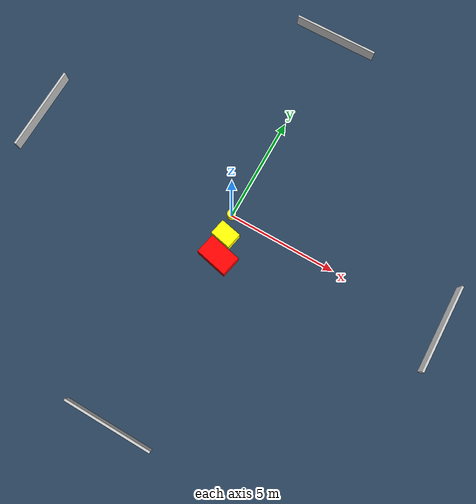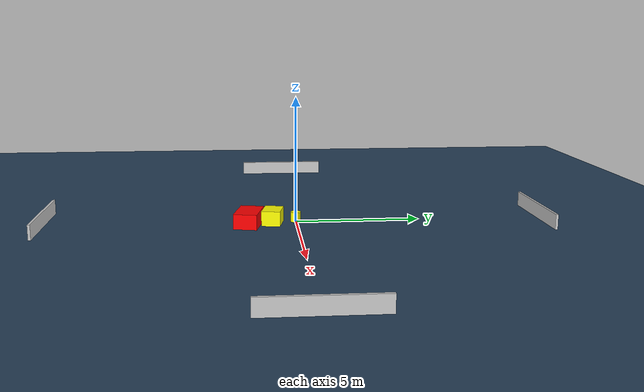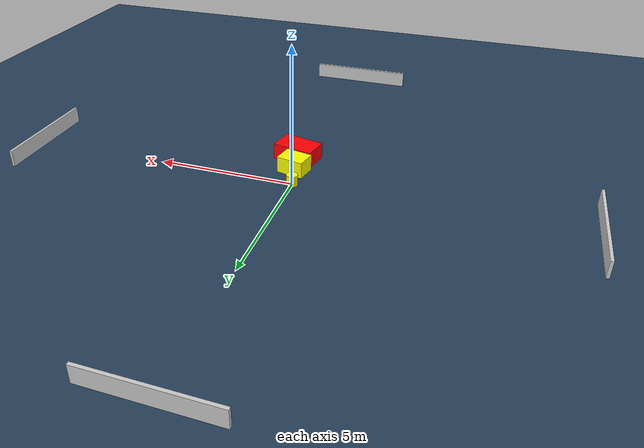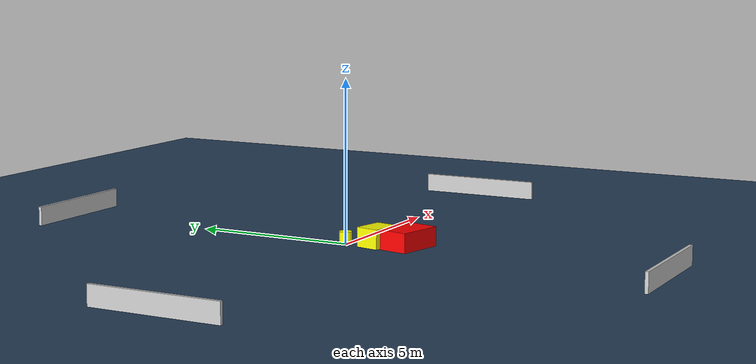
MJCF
<?xml version="1.0" ?>
<mujoco model="generated_environment">
  <option timestep="0.01" integrator="RK4" cone="elliptic"/>
  <default>
    <geom density="1"/>
  </default>
  <asset>
    <texture builtin="gradient" height="3072" name="skybox" rgb1="0.3 0.5 0.7" rgb2="0 0 0" type="skybox" width="512"/>
    <texture builtin="checker" height="300" name="groundplane" rgb1="0.2 0.3 0.4" rgb2="0.1 0.2 0.3" type="2d" width="300"/>
    <material name="groundplane" reflectance="0.2" texrepeat="5 5" texture="groundplane"/>
  </asset>
  <worldbody>
    <light dir="0 0 -1" directional="true" pos="0 0 1.5"/>
    <geom condim="3" friction="0.5 0.005 0.001" material="groundplane" name="floor" pos="0 0 0" size="0 0 0.05" type="plane"/>
    <body name="walls">
      <geom name="wall_1" condim="4" pos="-10.0 0.0 0.3" rgba="0.800000011920929 0.800000011920929 0.800000011920929 1.0" size="0.05 2.0 0.3" type="box"/>
      <geom name="wall_2" condim="4" pos="10.0 0.0 0.3" rgba="0.800000011920929 0.800000011920929 0.800000011920929 1.0" size="0.05 2.0 0.3" type="box"/>
      <geom name="wall_3" condim="4" pos="0.0 -10.0 0.3" rgba="0.800000011920929 0.800000011920929 0.800000011920929 1.0" size="2.0 0.05 0.3" type="box"/>
      <geom name="wall_4" condim="4" pos="0.0 10.0 0.3" rgba="0.800000011920929 0.800000011920929 0.800000011920929 1.0" size="2.0 0.05 0.3" type="box"/>
    </body>
    <body name="robot">
      <joint name="joint_x" type="slide" pos="0 0 0" axis="1 0 0"/>
      <joint name="joint_y" type="slide" pos="0 0 0" axis="0 1 0"/>
      <geom name="robot" type="cylinder" pos="0.0 0.0 0.2" size="0.2 0.2 0.0" mass="5.0" friction="1.0 0.005 0.0001" condim="4" rgba="1.0 1.0 0.0 1.0"/>
    </body>
    <body name="obstacle_1_movable">
      <geom name="obstacle_1_movable" condim="4" pos="0.2351429753512525 -0.9431464544852 0.3" euler="0 0 348.09678841187764" friction="0.0 0.005 0.001" rgba="1.0 1.0 0.0 1.0" size="0.49079045127538967 0.3705281589755788 0.3" type="box" mass="0.1"/>
      <joint type="free"/>
    </body>
    <body name="obstacle_2_static">
      <geom name="obstacle_2_static" condim="4" pos="0.4069399522330972 -1.8936000255724887 0.3" euler="0 0 347.32731263303987" friction="0.0 0.005 0.001" rgba="1.0 0.0 0.0 1.0" size="0.7509794377327126 0.4670195556404791 0.3" type="box"/>
    </body>
  </worldbody>
  <actuator>
    <motor name="actuator_x" joint="joint_x" gear="1" ctrlrange="-1 1"/>
    <motor name="actuator_y" joint="joint_y" gear="1" ctrlrange="-1 1"/>
  </actuator>
</mujoco>
